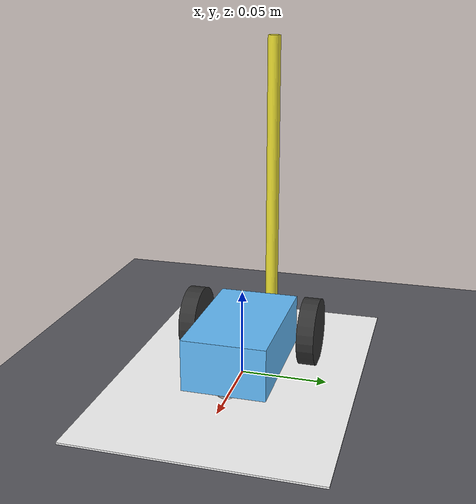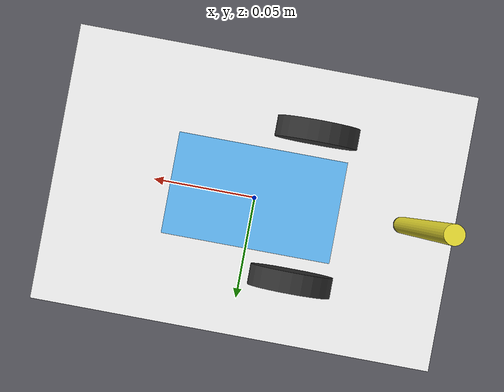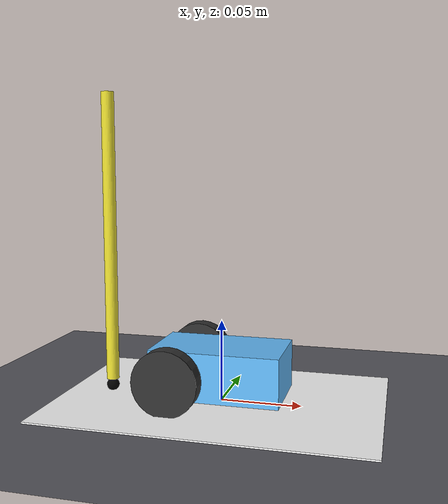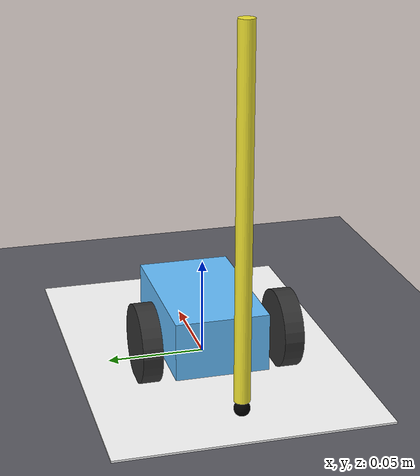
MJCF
<mujoco model="lego_car_with_pencil">

  <!-- TUNE: simulation timestep (s) — smaller = more accurate, slower -->
  <option timestep="0.002"/>

  <default>
    <geom rgba=".4 .75 1.0 1"/>
  </default>

  <asset>
    <texture type="skybox" builtin="gradient" rgb1="1 1 1" rgb2=".6 .8 1" width="256" height="256"/>
  </asset>

  <worldbody>
    <light pos="0 0 1" dir="0 0 -1" diffuse="1 1 1"/>

    <!-- Darker than the white paper/skybox so the paper is visible against it in renders.
         TUNE: floor friction="sliding torsional rolling" -->
    <geom name="floor" type="plane" size="1 1 0.01" rgba=".35 .35 .38 1"
          friction="1 0.005 0.0001"/>

    <!-- Paper surface: matches the printed ArUco calibration sheet (coordinate_plane.py),
         199mm x 137mm, resting on top of the floor.
         TUNE: paper friction="sliding torsional rolling" -->
    <geom name="paper" type="box" size="0.0995 0.0685 0.0005" pos="0 0 0.0005"
          rgba="1 1 1 1" friction="0.3 0.002 0.0001"/>

    <!-- free joint lets the chassis move in 3-D -->
    <body name="chassis" pos="0 0 0.02">
      <joint type="free"/>

      <!-- TUNE: chassis inertial — pos=COM offset, mass (kg), diaginertia Ixx Iyy Izz (kg·m²)
           Ixx=roll resistance  Iyy=pitch resistance  Izz=yaw resistance -->
      <inertial pos="0 0 -0.013" mass="0.15" diaginertia="1.3e-5 3.0e-5 3.6e-5"/>

      <geom type="box" size="0.04 0.024 0.015"/>

      <body name="wheel_left" pos="-0.024 -0.036 0">
        <joint name="joint_left" type="hinge" axis="0 1 0" damping="0.005"/>
        <!-- TUNE: wheel mass (kg) and inertia (kg·m²) -->
        <inertial pos="0 0 0" mass="0.02" diaginertia="2.2e-6 4.0e-6 2.2e-6"/>
        <geom type="cylinder" size="0.02 0.005" euler="90 0 0" rgba=".2 .2 .2 1"
              friction="1.5 0.005 0.0001" condim="6" priority="1"/>
      </body>

      <body name="wheel_right" pos="-0.024 0.036 0">
        <joint name="joint_right" type="hinge" axis="0 1 0" damping="0.005"/>
        <inertial pos="0 0 0" mass="0.02" diaginertia="2.2e-6 4.0e-6 2.2e-6"/>
        <geom type="cylinder" size="0.02 0.005" euler="90 0 0" rgba=".2 .2 .2 1"
              friction="1.5 0.005 0.0001" condim="6" priority="1"/>
      </body>

      <geom name="front_skid" type="sphere" size="0.008" pos="0.032 0 -0.012"
            rgba=".9 .9 .9 1" friction="0.1 0.005 0.0001" priority="1"/>

      <body name="pencil" pos="-0.073 0 0.170">
        <inertial pos="0 0 -0.091" mass="0.006" diaginertia="1.7e-5 1.7e-5 5e-8"/>

        <geom name="pencil_barrel" type="cylinder" size="0.004 0.091"
              pos="0 0 -0.091" rgba=".95 .9 .2 1"/>

        <geom name="pencil_tip" type="sphere" size="0.004"
              pos="0 0 -0.186" rgba="0 0 0 1"
              friction="0.05 0.001 0.0001" priority="1"/>

        <!-- trace site at the exact ground-contact point of the pencil tip -->
        <site name="pencil_trace" pos="0 0 -0.190" size="0.002" rgba="0 0 0 1"/>
      </body>

    </body>
  </worldbody>

  <!-- TUNE: gear = torque scale (N·m per unit control input) — higher = more speed/force
       Joint mapping is intentionally crossed (differential-drive convention) -->
  <actuator>
    <motor name="motor_left"  joint="joint_right" gear="0.05"/>
    <motor name="motor_right" joint="joint_left"  gear="0.05"/>
  </actuator>

</mujoco>
